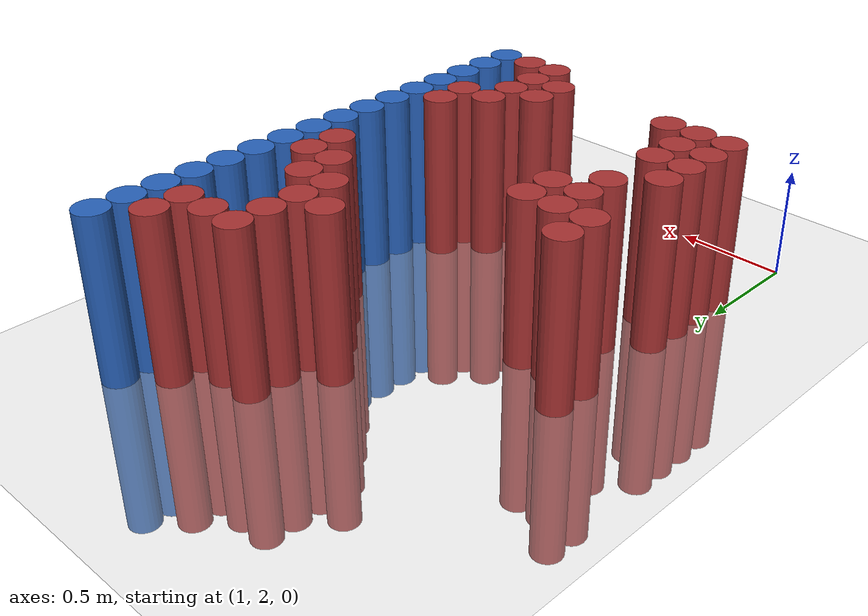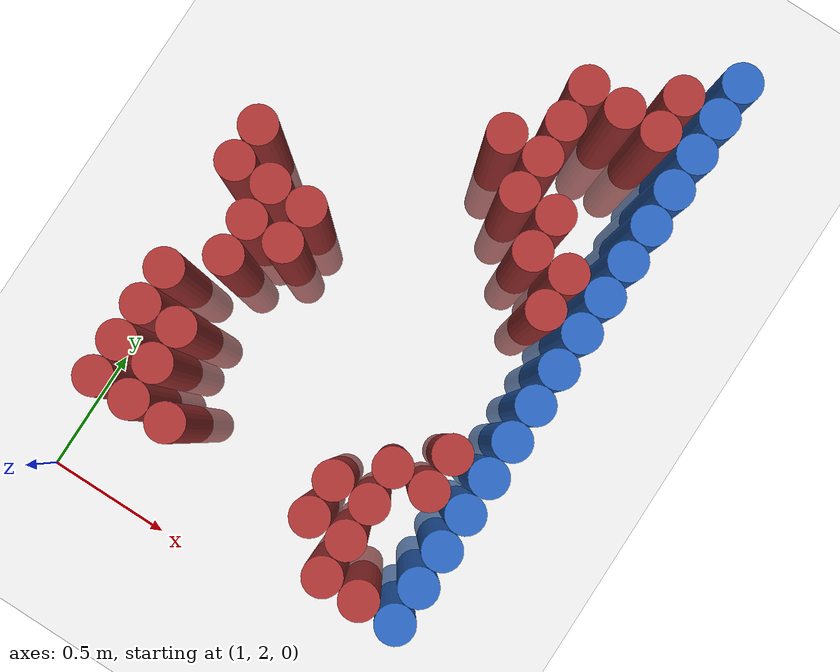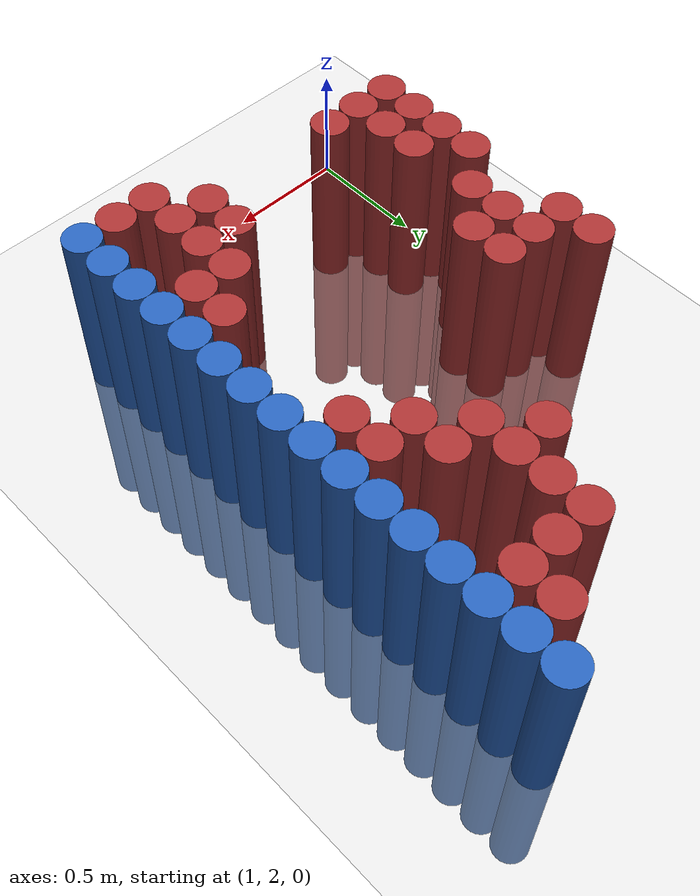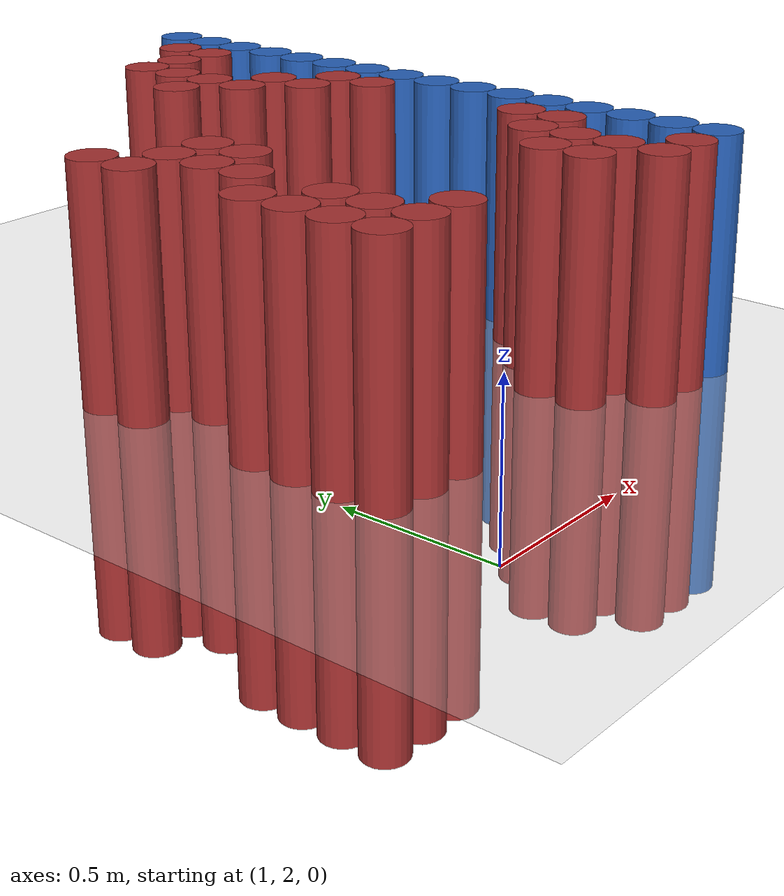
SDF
<sdf version="1.6">
 <world name="default">
  <model name="ground_plane">
   <static>1</static>
   <link name="link">
    <collision name="collision">
     <geometry><plane><normal>0 0 1</normal><size>100 100</size></plane></geometry>
     <surface><friction><ode><mu>100</mu><mu2>50</mu2></ode></friction></surface>
    </collision>
    <visual name="visual">
     <cast_shadows>0</cast_shadows>
     <geometry><plane><normal>0 0 1</normal><size>100 100</size></plane></geometry>
     <material>
      <script><uri>file://media/materials/scripts/gazebo.material</uri><name>Gazebo/Grey</name></script>
     </material>
    </visual>
   </link>
  </model>
  <model name="unit_cylinder_172">
   <static>1</static>
   <pose>1.075000 2.425000 0.000000 0.000000 0.000000 0.000000</pose>
   <link name="link">
    <inertial>
     <mass>1</mass>
     <inertia><ixx>0.145833</ixx><ixy>0</ixy><ixz>0</ixz><iyy>0.145833</iyy><iyz>0</iyz><izz>0.125</izz></inertia>
    </inertial>
    <collision name="collision">
     <geometry><cylinder><radius>0.075000</radius><length>1.5</length></cylinder></geometry>
    </collision>
    <visual name="visual">
     <geometry><cylinder><radius>0.075000</radius><length>1.5</length></cylinder></geometry>
     <material>
      <ambient>0.648000 0.192000 0.192000 1</ambient>
      <diffuse>0.648000 0.192000 0.192000 1</diffuse>
     </material>
     <material>
      <script><name>Gazebo/Grey</name><uri>file://media/materials/scripts/gazebo.material</uri></script>
     </material>
    </visual>
   </link>
  </model>
  <model name="unit_cylinder_173">
   <static>1</static>
   <pose>1.075000 2.575000 0.000000 0.000000 0.000000 0.000000</pose>
   <link name="link">
    <inertial>
     <mass>1</mass>
     <inertia><ixx>0.145833</ixx><ixy>0</ixy><ixz>0</ixz><iyy>0.145833</iyy><iyz>0</iyz><izz>0.125</izz></inertia>
    </inertial>
    <collision name="collision">
     <geometry><cylinder><radius>0.075000</radius><length>1.5</length></cylinder></geometry>
    </collision>
    <visual name="visual">
     <geometry><cylinder><radius>0.075000</radius><length>1.5</length></cylinder></geometry>
     <material>
      <ambient>0.648000 0.192000 0.192000 1</ambient>
      <diffuse>0.648000 0.192000 0.192000 1</diffuse>
     </material>
     <material>
      <script><name>Gazebo/Grey</name><uri>file://media/materials/scripts/gazebo.material</uri></script>
     </material>
    </visual>
   </link>
  </model>
  <model name="unit_cylinder_174">
   <static>1</static>
   <pose>1.075000 2.725000 0.000000 0.000000 0.000000 0.000000</pose>
   <link name="link">
    <inertial>
     <mass>1</mass>
     <inertia><ixx>0.145833</ixx><ixy>0</ixy><ixz>0</ixz><iyy>0.145833</iyy><iyz>0</iyz><izz>0.125</izz></inertia>
    </inertial>
    <collision name="collision">
     <geometry><cylinder><radius>0.075000</radius><length>1.5</length></cylinder></geometry>
    </collision>
    <visual name="visual">
     <geometry><cylinder><radius>0.075000</radius><length>1.5</length></cylinder></geometry>
     <material>
      <ambient>0.648000 0.192000 0.192000 1</ambient>
      <diffuse>0.648000 0.192000 0.192000 1</diffuse>
     </material>
     <material>
      <script><name>Gazebo/Grey</name><uri>file://media/materials/scripts/gazebo.material</uri></script>
     </material>
    </visual>
   </link>
  </model>
  <model name="unit_cylinder_175">
   <static>1</static>
   <pose>1.075000 2.875000 0.000000 0.000000 0.000000 0.000000</pose>
   <link name="link">
    <inertial>
     <mass>1</mass>
     <inertia><ixx>0.145833</ixx><ixy>0</ixy><ixz>0</ixz><iyy>0.145833</iyy><iyz>0</iyz><izz>0.125</izz></inertia>
    </inertial>
    <collision name="collision">
     <geometry><cylinder><radius>0.075000</radius><length>1.5</length></cylinder></geometry>
    </collision>
    <visual name="visual">
     <geometry><cylinder><radius>0.075000</radius><length>1.5</length></cylinder></geometry>
     <material>
      <ambient>0.648000 0.192000 0.192000 1</ambient>
      <diffuse>0.648000 0.192000 0.192000 1</diffuse>
     </material>
     <material>
      <script><name>Gazebo/Grey</name><uri>file://media/materials/scripts/gazebo.material</uri></script>
     </material>
    </visual>
   </link>
  </model>
  <model name="unit_cylinder_176">
   <static>1</static>
   <pose>1.075000 3.325000 0.000000 0.000000 0.000000 0.000000</pose>
   <link name="link">
    <inertial>
     <mass>1</mass>
     <inertia><ixx>0.145833</ixx><ixy>0</ixy><ixz>0</ixz><iyy>0.145833</iyy><iyz>0</iyz><izz>0.125</izz></inertia>
    </inertial>
    <collision name="collision">
     <geometry><cylinder><radius>0.075000</radius><length>1.5</length></cylinder></geometry>
    </collision>
    <visual name="visual">
     <geometry><cylinder><radius>0.075000</radius><length>1.5</length></cylinder></geometry>
     <material>
      <ambient>0.648000 0.192000 0.192000 1</ambient>
      <diffuse>0.648000 0.192000 0.192000 1</diffuse>
     </material>
     <material>
      <script><name>Gazebo/Grey</name><uri>file://media/materials/scripts/gazebo.material</uri></script>
     </material>
    </visual>
   </link>
  </model>
  <model name="unit_cylinder_177">
   <static>1</static>
   <pose>1.075000 3.475000 0.000000 0.000000 0.000000 0.000000</pose>
   <link name="link">
    <inertial>
     <mass>1</mass>
     <inertia><ixx>0.145833</ixx><ixy>0</ixy><ixz>0</ixz><iyy>0.145833</iyy><iyz>0</iyz><izz>0.125</izz></inertia>
    </inertial>
    <collision name="collision">
     <geometry><cylinder><radius>0.075000</radius><length>1.5</length></cylinder></geometry>
    </collision>
    <visual name="visual">
     <geometry><cylinder><radius>0.075000</radius><length>1.5</length></cylinder></geometry>
     <material>
      <ambient>0.648000 0.192000 0.192000 1</ambient>
      <diffuse>0.648000 0.192000 0.192000 1</diffuse>
     </material>
     <material>
      <script><name>Gazebo/Grey</name><uri>file://media/materials/scripts/gazebo.material</uri></script>
     </material>
    </visual>
   </link>
  </model>
  <model name="unit_cylinder_179">
   <static>1</static>
   <pose>1.225000 2.425000 0.000000 0.000000 0.000000 0.000000</pose>
   <link name="link">
    <inertial>
     <mass>1</mass>
     <inertia><ixx>0.145833</ixx><ixy>0</ixy><ixz>0</ixz><iyy>0.145833</iyy><iyz>0</iyz><izz>0.125</izz></inertia>
    </inertial>
    <collision name="collision">
     <geometry><cylinder><radius>0.075000</radius><length>1.5</length></cylinder></geometry>
    </collision>
    <visual name="visual">
     <geometry><cylinder><radius>0.075000</radius><length>1.5</length></cylinder></geometry>
     <material>
      <ambient>0.648000 0.192000 0.192000 1</ambient>
      <diffuse>0.648000 0.192000 0.192000 1</diffuse>
     </material>
     <material>
      <script><name>Gazebo/Grey</name><uri>file://media/materials/scripts/gazebo.material</uri></script>
     </material>
    </visual>
   </link>
  </model>
  <model name="unit_cylinder_180">
   <static>1</static>
   <pose>1.225000 2.575000 0.000000 0.000000 0.000000 0.000000</pose>
   <link name="link">
    <inertial>
     <mass>1</mass>
     <inertia><ixx>0.145833</ixx><ixy>0</ixy><ixz>0</ixz><iyy>0.145833</iyy><iyz>0</iyz><izz>0.125</izz></inertia>
    </inertial>
    <collision name="collision">
     <geometry><cylinder><radius>0.075000</radius><length>1.5</length></cylinder></geometry>
    </collision>
    <visual name="visual">
     <geometry><cylinder><radius>0.075000</radius><length>1.5</length></cylinder></geometry>
     <material>
      <ambient>0.648000 0.192000 0.192000 1</ambient>
      <diffuse>0.648000 0.192000 0.192000 1</diffuse>
     </material>
     <material>
      <script><name>Gazebo/Grey</name><uri>file://media/materials/scripts/gazebo.material</uri></script>
     </material>
    </visual>
   </link>
  </model>
  <model name="unit_cylinder_181">
   <static>1</static>
   <pose>1.225000 2.725000 0.000000 0.000000 0.000000 0.000000</pose>
   <link name="link">
    <inertial>
     <mass>1</mass>
     <inertia><ixx>0.145833</ixx><ixy>0</ixy><ixz>0</ixz><iyy>0.145833</iyy><iyz>0</iyz><izz>0.125</izz></inertia>
    </inertial>
    <collision name="collision">
     <geometry><cylinder><radius>0.075000</radius><length>1.5</length></cylinder></geometry>
    </collision>
    <visual name="visual">
     <geometry><cylinder><radius>0.075000</radius><length>1.5</length></cylinder></geometry>
     <material>
      <ambient>0.648000 0.192000 0.192000 1</ambient>
      <diffuse>0.648000 0.192000 0.192000 1</diffuse>
     </material>
     <material>
      <script><name>Gazebo/Grey</name><uri>file://media/materials/scripts/gazebo.material</uri></script>
     </material>
    </visual>
   </link>
  </model>
  <model name="unit_cylinder_182">
   <static>1</static>
   <pose>1.225000 3.025000 0.000000 0.000000 0.000000 0.000000</pose>
   <link name="link">
    <inertial>
     <mass>1</mass>
     <inertia><ixx>0.145833</ixx><ixy>0</ixy><ixz>0</ixz><iyy>0.145833</iyy><iyz>0</iyz><izz>0.125</izz></inertia>
    </inertial>
    <collision name="collision">
     <geometry><cylinder><radius>0.075000</radius><length>1.5</length></cylinder></geometry>
    </collision>
    <visual name="visual">
     <geometry><cylinder><radius>0.075000</radius><length>1.5</length></cylinder></geometry>
     <material>
      <ambient>0.648000 0.192000 0.192000 1</ambient>
      <diffuse>0.648000 0.192000 0.192000 1</diffuse>
     </material>
     <material>
      <script><name>Gazebo/Grey</name><uri>file://media/materials/scripts/gazebo.material</uri></script>
     </material>
    </visual>
   </link>
  </model>
  <model name="unit_cylinder_183">
   <static>1</static>
   <pose>1.225000 3.175000 0.000000 0.000000 0.000000 0.000000</pose>
   <link name="link">
    <inertial>
     <mass>1</mass>
     <inertia><ixx>0.145833</ixx><ixy>0</ixy><ixz>0</ixz><iyy>0.145833</iyy><iyz>0</iyz><izz>0.125</izz></inertia>
    </inertial>
    <collision name="collision">
     <geometry><cylinder><radius>0.075000</radius><length>1.5</length></cylinder></geometry>
    </collision>
    <visual name="visual">
     <geometry><cylinder><radius>0.075000</radius><length>1.5</length></cylinder></geometry>
     <material>
      <ambient>0.648000 0.192000 0.192000 1</ambient>
      <diffuse>0.648000 0.192000 0.192000 1</diffuse>
     </material>
     <material>
      <script><name>Gazebo/Grey</name><uri>file://media/materials/scripts/gazebo.material</uri></script>
     </material>
    </visual>
   </link>
  </model>
  <model name="unit_cylinder_184">
   <static>1</static>
   <pose>1.225000 3.325000 0.000000 0.000000 0.000000 0.000000</pose>
   <link name="link">
    <inertial>
     <mass>1</mass>
     <inertia><ixx>0.145833</ixx><ixy>0</ixy><ixz>0</ixz><iyy>0.145833</iyy><iyz>0</iyz><izz>0.125</izz></inertia>
    </inertial>
    <collision name="collision">
     <geometry><cylinder><radius>0.075000</radius><length>1.5</length></cylinder></geometry>
    </collision>
    <visual name="visual">
     <geometry><cylinder><radius>0.075000</radius><length>1.5</length></cylinder></geometry>
     <material>
      <ambient>0.648000 0.192000 0.192000 1</ambient>
      <diffuse>0.648000 0.192000 0.192000 1</diffuse>
     </material>
     <material>
      <script><name>Gazebo/Grey</name><uri>file://media/materials/scripts/gazebo.material</uri></script>
     </material>
    </visual>
   </link>
  </model>
  <model name="unit_cylinder_188">
   <static>1</static>
   <pose>1.375000 2.425000 0.000000 0.000000 0.000000 0.000000</pose>
   <link name="link">
    <inertial>
     <mass>1</mass>
     <inertia><ixx>0.145833</ixx><ixy>0</ixy><ixz>0</ixz><iyy>0.145833</iyy><iyz>0</iyz><izz>0.125</izz></inertia>
    </inertial>
    <collision name="collision">
     <geometry><cylinder><radius>0.075000</radius><length>1.5</length></cylinder></geometry>
    </collision>
    <visual name="visual">
     <geometry><cylinder><radius>0.075000</radius><length>1.5</length></cylinder></geometry>
     <material>
      <ambient>0.648000 0.192000 0.192000 1</ambient>
      <diffuse>0.648000 0.192000 0.192000 1</diffuse>
     </material>
     <material>
      <script><name>Gazebo/Grey</name><uri>file://media/materials/scripts/gazebo.material</uri></script>
     </material>
    </visual>
   </link>
  </model>
  <model name="unit_cylinder_189">
   <static>1</static>
   <pose>1.375000 3.175000 0.000000 0.000000 0.000000 0.000000</pose>
   <link name="link">
    <inertial>
     <mass>1</mass>
     <inertia><ixx>0.145833</ixx><ixy>0</ixy><ixz>0</ixz><iyy>0.145833</iyy><iyz>0</iyz><izz>0.125</izz></inertia>
    </inertial>
    <collision name="collision">
     <geometry><cylinder><radius>0.075000</radius><length>1.5</length></cylinder></geometry>
    </collision>
    <visual name="visual">
     <geometry><cylinder><radius>0.075000</radius><length>1.5</length></cylinder></geometry>
     <material>
      <ambient>0.648000 0.192000 0.192000 1</ambient>
      <diffuse>0.648000 0.192000 0.192000 1</diffuse>
     </material>
     <material>
      <script><name>Gazebo/Grey</name><uri>file://media/materials/scripts/gazebo.material</uri></script>
     </material>
    </visual>
   </link>
  </model>
  <model name="unit_cylinder_190">
   <static>1</static>
   <pose>1.375000 3.325000 0.000000 0.000000 0.000000 0.000000</pose>
   <link name="link">
    <inertial>
     <mass>1</mass>
     <inertia><ixx>0.145833</ixx><ixy>0</ixy><ixz>0</ixz><iyy>0.145833</iyy><iyz>0</iyz><izz>0.125</izz></inertia>
    </inertial>
    <collision name="collision">
     <geometry><cylinder><radius>0.075000</radius><length>1.5</length></cylinder></geometry>
    </collision>
    <visual name="visual">
     <geometry><cylinder><radius>0.075000</radius><length>1.5</length></cylinder></geometry>
     <material>
      <ambient>0.648000 0.192000 0.192000 1</ambient>
      <diffuse>0.648000 0.192000 0.192000 1</diffuse>
     </material>
     <material>
      <script><name>Gazebo/Grey</name><uri>file://media/materials/scripts/gazebo.material</uri></script>
     </material>
    </visual>
   </link>
  </model>
  <model name="unit_cylinder_198">
   <static>1</static>
   <pose>1.825000 3.925000 0.000000 0.000000 0.000000 0.000000</pose>
   <link name="link">
    <inertial>
     <mass>1</mass>
     <inertia><ixx>0.145833</ixx><ixy>0</ixy><ixz>0</ixz><iyy>0.145833</iyy><iyz>0</iyz><izz>0.125</izz></inertia>
    </inertial>
    <collision name="collision">
     <geometry><cylinder><radius>0.075000</radius><length>1.5</length></cylinder></geometry>
    </collision>
    <visual name="visual">
     <geometry><cylinder><radius>0.075000</radius><length>1.5</length></cylinder></geometry>
     <material>
      <ambient>0.648000 0.192000 0.192000 1</ambient>
      <diffuse>0.648000 0.192000 0.192000 1</diffuse>
     </material>
     <material>
      <script><name>Gazebo/Grey</name><uri>file://media/materials/scripts/gazebo.material</uri></script>
     </material>
    </visual>
   </link>
  </model>
  <model name="unit_cylinder_199">
   <static>1</static>
   <pose>1.975000 2.425000 0.000000 0.000000 0.000000 0.000000</pose>
   <link name="link">
    <inertial>
     <mass>1</mass>
     <inertia><ixx>0.145833</ixx><ixy>0</ixy><ixz>0</ixz><iyy>0.145833</iyy><iyz>0</iyz><izz>0.125</izz></inertia>
    </inertial>
    <collision name="collision">
     <geometry><cylinder><radius>0.075000</radius><length>1.5</length></cylinder></geometry>
    </collision>
    <visual name="visual">
     <geometry><cylinder><radius>0.075000</radius><length>1.5</length></cylinder></geometry>
     <material>
      <ambient>0.648000 0.192000 0.192000 1</ambient>
      <diffuse>0.648000 0.192000 0.192000 1</diffuse>
     </material>
     <material>
      <script><name>Gazebo/Grey</name><uri>file://media/materials/scripts/gazebo.material</uri></script>
     </material>
    </visual>
   </link>
  </model>
  <model name="unit_cylinder_200">
   <static>1</static>
   <pose>1.975000 2.575000 0.000000 0.000000 0.000000 0.000000</pose>
   <link name="link">
    <inertial>
     <mass>1</mass>
     <inertia><ixx>0.145833</ixx><ixy>0</ixy><ixz>0</ixz><iyy>0.145833</iyy><iyz>0</iyz><izz>0.125</izz></inertia>
    </inertial>
    <collision name="collision">
     <geometry><cylinder><radius>0.075000</radius><length>1.5</length></cylinder></geometry>
    </collision>
    <visual name="visual">
     <geometry><cylinder><radius>0.075000</radius><length>1.5</length></cylinder></geometry>
     <material>
      <ambient>0.648000 0.192000 0.192000 1</ambient>
      <diffuse>0.648000 0.192000 0.192000 1</diffuse>
     </material>
     <material>
      <script><name>Gazebo/Grey</name><uri>file://media/materials/scripts/gazebo.material</uri></script>
     </material>
    </visual>
   </link>
  </model>
  <model name="unit_cylinder_201">
   <static>1</static>
   <pose>1.975000 3.775000 0.000000 0.000000 0.000000 0.000000</pose>
   <link name="link">
    <inertial>
     <mass>1</mass>
     <inertia><ixx>0.145833</ixx><ixy>0</ixy><ixz>0</ixz><iyy>0.145833</iyy><iyz>0</iyz><izz>0.125</izz></inertia>
    </inertial>
    <collision name="collision">
     <geometry><cylinder><radius>0.075000</radius><length>1.5</length></cylinder></geometry>
    </collision>
    <visual name="visual">
     <geometry><cylinder><radius>0.075000</radius><length>1.5</length></cylinder></geometry>
     <material>
      <ambient>0.648000 0.192000 0.192000 1</ambient>
      <diffuse>0.648000 0.192000 0.192000 1</diffuse>
     </material>
     <material>
      <script><name>Gazebo/Grey</name><uri>file://media/materials/scripts/gazebo.material</uri></script>
     </material>
    </visual>
   </link>
  </model>
  <model name="unit_cylinder_202">
   <static>1</static>
   <pose>1.975000 3.925000 0.000000 0.000000 0.000000 0.000000</pose>
   <link name="link">
    <inertial>
     <mass>1</mass>
     <inertia><ixx>0.145833</ixx><ixy>0</ixy><ixz>0</ixz><iyy>0.145833</iyy><iyz>0</iyz><izz>0.125</izz></inertia>
    </inertial>
    <collision name="collision">
     <geometry><cylinder><radius>0.075000</radius><length>1.5</length></cylinder></geometry>
    </collision>
    <visual name="visual">
     <geometry><cylinder><radius>0.075000</radius><length>1.5</length></cylinder></geometry>
     <material>
      <ambient>0.648000 0.192000 0.192000 1</ambient>
      <diffuse>0.648000 0.192000 0.192000 1</diffuse>
     </material>
     <material>
      <script><name>Gazebo/Grey</name><uri>file://media/materials/scripts/gazebo.material</uri></script>
     </material>
    </visual>
   </link>
  </model>
  <model name="unit_cylinder_203">
   <static>1</static>
   <pose>1.975000 4.075000 0.000000 0.000000 0.000000 0.000000</pose>
   <link name="link">
    <inertial>
     <mass>1</mass>
     <inertia><ixx>0.145833</ixx><ixy>0</ixy><ixz>0</ixz><iyy>0.145833</iyy><iyz>0</iyz><izz>0.125</izz></inertia>
    </inertial>
    <collision name="collision">
     <geometry><cylinder><radius>0.075000</radius><length>1.5</length></cylinder></geometry>
    </collision>
    <visual name="visual">
     <geometry><cylinder><radius>0.075000</radius><length>1.5</length></cylinder></geometry>
     <material>
      <ambient>0.648000 0.192000 0.192000 1</ambient>
      <diffuse>0.648000 0.192000 0.192000 1</diffuse>
     </material>
     <material>
      <script><name>Gazebo/Grey</name><uri>file://media/materials/scripts/gazebo.material</uri></script>
     </material>
    </visual>
   </link>
  </model>
  <model name="unit_cylinder_204">
   <static>1</static>
   <pose>1.975000 4.225000 0.000000 0.000000 0.000000 0.000000</pose>
   <link name="link">
    <inertial>
     <mass>1</mass>
     <inertia><ixx>0.145833</ixx><ixy>0</ixy><ixz>0</ixz><iyy>0.145833</iyy><iyz>0</iyz><izz>0.125</izz></inertia>
    </inertial>
    <collision name="collision">
     <geometry><cylinder><radius>0.075000</radius><length>1.5</length></cylinder></geometry>
    </collision>
    <visual name="visual">
     <geometry><cylinder><radius>0.075000</radius><length>1.5</length></cylinder></geometry>
     <material>
      <ambient>0.648000 0.192000 0.192000 1</ambient>
      <diffuse>0.648000 0.192000 0.192000 1</diffuse>
     </material>
     <material>
      <script><name>Gazebo/Grey</name><uri>file://media/materials/scripts/gazebo.material</uri></script>
     </material>
    </visual>
   </link>
  </model>
  <model name="unit_cylinder_206">
   <static>1</static>
   <pose>2.125000 2.275000 0.000000 0.000000 0.000000 0.000000</pose>
   <link name="link">
    <inertial>
     <mass>1</mass>
     <inertia><ixx>0.145833</ixx><ixy>0</ixy><ixz>0</ixz><iyy>0.145833</iyy><iyz>0</iyz><izz>0.125</izz></inertia>
    </inertial>
    <collision name="collision">
     <geometry><cylinder><radius>0.075000</radius><length>1.5</length></cylinder></geometry>
    </collision>
    <visual name="visual">
     <geometry><cylinder><radius>0.075000</radius><length>1.5</length></cylinder></geometry>
     <material>
      <ambient>0.648000 0.192000 0.192000 1</ambient>
      <diffuse>0.648000 0.192000 0.192000 1</diffuse>
     </material>
     <material>
      <script><name>Gazebo/Grey</name><uri>file://media/materials/scripts/gazebo.material</uri></script>
     </material>
    </visual>
   </link>
  </model>
  <model name="unit_cylinder_207">
   <static>1</static>
   <pose>2.125000 2.425000 0.000000 0.000000 0.000000 0.000000</pose>
   <link name="link">
    <inertial>
     <mass>1</mass>
     <inertia><ixx>0.145833</ixx><ixy>0</ixy><ixz>0</ixz><iyy>0.145833</iyy><iyz>0</iyz><izz>0.125</izz></inertia>
    </inertial>
    <collision name="collision">
     <geometry><cylinder><radius>0.075000</radius><length>1.5</length></cylinder></geometry>
    </collision>
    <visual name="visual">
     <geometry><cylinder><radius>0.075000</radius><length>1.5</length></cylinder></geometry>
     <material>
      <ambient>0.648000 0.192000 0.192000 1</ambient>
      <diffuse>0.648000 0.192000 0.192000 1</diffuse>
     </material>
     <material>
      <script><name>Gazebo/Grey</name><uri>file://media/materials/scripts/gazebo.material</uri></script>
     </material>
    </visual>
   </link>
  </model>
  <model name="unit_cylinder_208">
   <static>1</static>
   <pose>2.125000 2.575000 0.000000 0.000000 0.000000 0.000000</pose>
   <link name="link">
    <inertial>
     <mass>1</mass>
     <inertia><ixx>0.145833</ixx><ixy>0</ixy><ixz>0</ixz><iyy>0.145833</iyy><iyz>0</iyz><izz>0.125</izz></inertia>
    </inertial>
    <collision name="collision">
     <geometry><cylinder><radius>0.075000</radius><length>1.5</length></cylinder></geometry>
    </collision>
    <visual name="visual">
     <geometry><cylinder><radius>0.075000</radius><length>1.5</length></cylinder></geometry>
     <material>
      <ambient>0.648000 0.192000 0.192000 1</ambient>
      <diffuse>0.648000 0.192000 0.192000 1</diffuse>
     </material>
     <material>
      <script><name>Gazebo/Grey</name><uri>file://media/materials/scripts/gazebo.material</uri></script>
     </material>
    </visual>
   </link>
  </model>
  <model name="unit_cylinder_209">
   <static>1</static>
   <pose>2.125000 2.725000 0.000000 0.000000 0.000000 0.000000</pose>
   <link name="link">
    <inertial>
     <mass>1</mass>
     <inertia><ixx>0.145833</ixx><ixy>0</ixy><ixz>0</ixz><iyy>0.145833</iyy><iyz>0</iyz><izz>0.125</izz></inertia>
    </inertial>
    <collision name="collision">
     <geometry><cylinder><radius>0.075000</radius><length>1.5</length></cylinder></geometry>
    </collision>
    <visual name="visual">
     <geometry><cylinder><radius>0.075000</radius><length>1.5</length></cylinder></geometry>
     <material>
      <ambient>0.648000 0.192000 0.192000 1</ambient>
      <diffuse>0.648000 0.192000 0.192000 1</diffuse>
     </material>
     <material>
      <script><name>Gazebo/Grey</name><uri>file://media/materials/scripts/gazebo.material</uri></script>
     </material>
    </visual>
   </link>
  </model>
  <model name="unit_cylinder_210">
   <static>1</static>
   <pose>2.125000 3.625000 0.000000 0.000000 0.000000 0.000000</pose>
   <link name="link">
    <inertial>
     <mass>1</mass>
     <inertia><ixx>0.145833</ixx><ixy>0</ixy><ixz>0</ixz><iyy>0.145833</iyy><iyz>0</iyz><izz>0.125</izz></inertia>
    </inertial>
    <collision name="collision">
     <geometry><cylinder><radius>0.075000</radius><length>1.5</length></cylinder></geometry>
    </collision>
    <visual name="visual">
     <geometry><cylinder><radius>0.075000</radius><length>1.5</length></cylinder></geometry>
     <material>
      <ambient>0.648000 0.192000 0.192000 1</ambient>
      <diffuse>0.648000 0.192000 0.192000 1</diffuse>
     </material>
     <material>
      <script><name>Gazebo/Grey</name><uri>file://media/materials/scripts/gazebo.material</uri></script>
     </material>
    </visual>
   </link>
  </model>
  <model name="unit_cylinder_211">
   <static>1</static>
   <pose>2.125000 3.775000 0.000000 0.000000 0.000000 0.000000</pose>
   <link name="link">
    <inertial>
     <mass>1</mass>
     <inertia><ixx>0.145833</ixx><ixy>0</ixy><ixz>0</ixz><iyy>0.145833</iyy><iyz>0</iyz><izz>0.125</izz></inertia>
    </inertial>
    <collision name="collision">
     <geometry><cylinder><radius>0.075000</radius><length>1.5</length></cylinder></geometry>
    </collision>
    <visual name="visual">
     <geometry><cylinder><radius>0.075000</radius><length>1.5</length></cylinder></geometry>
     <material>
      <ambient>0.648000 0.192000 0.192000 1</ambient>
      <diffuse>0.648000 0.192000 0.192000 1</diffuse>
     </material>
     <material>
      <script><name>Gazebo/Grey</name><uri>file://media/materials/scripts/gazebo.material</uri></script>
     </material>
    </visual>
   </link>
  </model>
  <model name="unit_cylinder_212">
   <static>1</static>
   <pose>2.125000 4.225000 0.000000 0.000000 0.000000 0.000000</pose>
   <link name="link">
    <inertial>
     <mass>1</mass>
     <inertia><ixx>0.145833</ixx><ixy>0</ixy><ixz>0</ixz><iyy>0.145833</iyy><iyz>0</iyz><izz>0.125</izz></inertia>
    </inertial>
    <collision name="collision">
     <geometry><cylinder><radius>0.075000</radius><length>1.5</length></cylinder></geometry>
    </collision>
    <visual name="visual">
     <geometry><cylinder><radius>0.075000</radius><length>1.5</length></cylinder></geometry>
     <material>
      <ambient>0.648000 0.192000 0.192000 1</ambient>
      <diffuse>0.648000 0.192000 0.192000 1</diffuse>
     </material>
     <material>
      <script><name>Gazebo/Grey</name><uri>file://media/materials/scripts/gazebo.material</uri></script>
     </material>
    </visual>
   </link>
  </model>
  <model name="unit_cylinder_222">
   <static>1</static>
   <pose>2.275000 2.275000 0.000000 0.000000 0.000000 0.000000</pose>
   <link name="link">
    <inertial>
     <mass>1</mass>
     <inertia><ixx>0.145833</ixx><ixy>0</ixy><ixz>0</ixz><iyy>0.145833</iyy><iyz>0</iyz><izz>0.125</izz></inertia>
    </inertial>
    <collision name="collision">
     <geometry><cylinder><radius>0.075000</radius><length>1.5</length></cylinder></geometry>
    </collision>
    <visual name="visual">
     <geometry><cylinder><radius>0.075000</radius><length>1.5</length></cylinder></geometry>
     <material>
      <ambient>0.648000 0.192000 0.192000 1</ambient>
      <diffuse>0.648000 0.192000 0.192000 1</diffuse>
     </material>
     <material>
      <script><name>Gazebo/Grey</name><uri>file://media/materials/scripts/gazebo.material</uri></script>
     </material>
    </visual>
   </link>
  </model>
  <model name="unit_cylinder_223">
   <static>1</static>
   <pose>2.275000 2.725000 0.000000 0.000000 0.000000 0.000000</pose>
   <link name="link">
    <inertial>
     <mass>1</mass>
     <inertia><ixx>0.145833</ixx><ixy>0</ixy><ixz>0</ixz><iyy>0.145833</iyy><iyz>0</iyz><izz>0.125</izz></inertia>
    </inertial>
    <collision name="collision">
     <geometry><cylinder><radius>0.075000</radius><length>1.5</length></cylinder></geometry>
    </collision>
    <visual name="visual">
     <geometry><cylinder><radius>0.075000</radius><length>1.5</length></cylinder></geometry>
     <material>
      <ambient>0.648000 0.192000 0.192000 1</ambient>
      <diffuse>0.648000 0.192000 0.192000 1</diffuse>
     </material>
     <material>
      <script><name>Gazebo/Grey</name><uri>file://media/materials/scripts/gazebo.material</uri></script>
     </material>
    </visual>
   </link>
  </model>
  <model name="unit_cylinder_224">
   <static>1</static>
   <pose>2.275000 2.875000 0.000000 0.000000 0.000000 0.000000</pose>
   <link name="link">
    <inertial>
     <mass>1</mass>
     <inertia><ixx>0.145833</ixx><ixy>0</ixy><ixz>0</ixz><iyy>0.145833</iyy><iyz>0</iyz><izz>0.125</izz></inertia>
    </inertial>
    <collision name="collision">
     <geometry><cylinder><radius>0.075000</radius><length>1.5</length></cylinder></geometry>
    </collision>
    <visual name="visual">
     <geometry><cylinder><radius>0.075000</radius><length>1.5</length></cylinder></geometry>
     <material>
      <ambient>0.648000 0.192000 0.192000 1</ambient>
      <diffuse>0.648000 0.192000 0.192000 1</diffuse>
     </material>
     <material>
      <script><name>Gazebo/Grey</name><uri>file://media/materials/scripts/gazebo.material</uri></script>
     </material>
    </visual>
   </link>
  </model>
  <model name="unit_cylinder_225">
   <static>1</static>
   <pose>2.275000 3.475000 0.000000 0.000000 0.000000 0.000000</pose>
   <link name="link">
    <inertial>
     <mass>1</mass>
     <inertia><ixx>0.145833</ixx><ixy>0</ixy><ixz>0</ixz><iyy>0.145833</iyy><iyz>0</iyz><izz>0.125</izz></inertia>
    </inertial>
    <collision name="collision">
     <geometry><cylinder><radius>0.075000</radius><length>1.5</length></cylinder></geometry>
    </collision>
    <visual name="visual">
     <geometry><cylinder><radius>0.075000</radius><length>1.5</length></cylinder></geometry>
     <material>
      <ambient>0.648000 0.192000 0.192000 1</ambient>
      <diffuse>0.648000 0.192000 0.192000 1</diffuse>
     </material>
     <material>
      <script><name>Gazebo/Grey</name><uri>file://media/materials/scripts/gazebo.material</uri></script>
     </material>
    </visual>
   </link>
  </model>
  <model name="unit_cylinder_226">
   <static>1</static>
   <pose>2.275000 3.625000 0.000000 0.000000 0.000000 0.000000</pose>
   <link name="link">
    <inertial>
     <mass>1</mass>
     <inertia><ixx>0.145833</ixx><ixy>0</ixy><ixz>0</ixz><iyy>0.145833</iyy><iyz>0</iyz><izz>0.125</izz></inertia>
    </inertial>
    <collision name="collision">
     <geometry><cylinder><radius>0.075000</radius><length>1.5</length></cylinder></geometry>
    </collision>
    <visual name="visual">
     <geometry><cylinder><radius>0.075000</radius><length>1.5</length></cylinder></geometry>
     <material>
      <ambient>0.648000 0.192000 0.192000 1</ambient>
      <diffuse>0.648000 0.192000 0.192000 1</diffuse>
     </material>
     <material>
      <script><name>Gazebo/Grey</name><uri>file://media/materials/scripts/gazebo.material</uri></script>
     </material>
    </visual>
   </link>
  </model>
  <model name="unit_cylinder_227">
   <static>1</static>
   <pose>2.275000 4.225000 0.000000 0.000000 0.000000 0.000000</pose>
   <link name="link">
    <inertial>
     <mass>1</mass>
     <inertia><ixx>0.145833</ixx><ixy>0</ixy><ixz>0</ixz><iyy>0.145833</iyy><iyz>0</iyz><izz>0.125</izz></inertia>
    </inertial>
    <collision name="collision">
     <geometry><cylinder><radius>0.075000</radius><length>1.5</length></cylinder></geometry>
    </collision>
    <visual name="visual">
     <geometry><cylinder><radius>0.075000</radius><length>1.5</length></cylinder></geometry>
     <material>
      <ambient>0.648000 0.192000 0.192000 1</ambient>
      <diffuse>0.648000 0.192000 0.192000 1</diffuse>
     </material>
     <material>
      <script><name>Gazebo/Grey</name><uri>file://media/materials/scripts/gazebo.material</uri></script>
     </material>
    </visual>
   </link>
  </model>
  <model name="unit_cylinder_228">
   <static>1</static>
   <pose>2.275000 4.375000 0.000000 0.000000 0.000000 0.000000</pose>
   <link name="link">
    <inertial>
     <mass>1</mass>
     <inertia><ixx>0.145833</ixx><ixy>0</ixy><ixz>0</ixz><iyy>0.145833</iyy><iyz>0</iyz><izz>0.125</izz></inertia>
    </inertial>
    <collision name="collision">
     <geometry><cylinder><radius>0.075000</radius><length>1.5</length></cylinder></geometry>
    </collision>
    <visual name="visual">
     <geometry><cylinder><radius>0.075000</radius><length>1.5</length></cylinder></geometry>
     <material>
      <ambient>0.648000 0.192000 0.192000 1</ambient>
      <diffuse>0.648000 0.192000 0.192000 1</diffuse>
     </material>
     <material>
      <script><name>Gazebo/Grey</name><uri>file://media/materials/scripts/gazebo.material</uri></script>
     </material>
    </visual>
   </link>
  </model>
  <model name="unit_cylinder_243">
   <static>1</static>
   <pose>2.425000 2.275000 0.000000 0.000000 0.000000 0.000000</pose>
   <link name="link">
    <inertial>
     <mass>1</mass>
     <inertia><ixx>0.145833</ixx><ixy>0</ixy><ixz>0</ixz><iyy>0.145833</iyy><iyz>0</iyz><izz>0.125</izz></inertia>
    </inertial>
    <collision name="collision">
     <geometry><cylinder><radius>0.075000</radius><length>1.5</length></cylinder></geometry>
    </collision>
    <visual name="visual">
     <geometry><cylinder><radius>0.075000</radius><length>1.5</length></cylinder></geometry>
     <material>
      <ambient>0.152000 0.379000 0.720000 1</ambient>
      <diffuse>0.152000 0.379000 0.720000 1</diffuse>
     </material>
     <material>
      <script><name>Gazebo/Grey</name><uri>file://media/materials/scripts/gazebo.material</uri></script>
     </material>
    </visual>
   </link>
  </model>
  <model name="unit_cylinder_244">
   <static>1</static>
   <pose>2.425000 2.425000 0.000000 0.000000 0.000000 0.000000</pose>
   <link name="link">
    <inertial>
     <mass>1</mass>
     <inertia><ixx>0.145833</ixx><ixy>0</ixy><ixz>0</ixz><iyy>0.145833</iyy><iyz>0</iyz><izz>0.125</izz></inertia>
    </inertial>
    <collision name="collision">
     <geometry><cylinder><radius>0.075000</radius><length>1.5</length></cylinder></geometry>
    </collision>
    <visual name="visual">
     <geometry><cylinder><radius>0.075000</radius><length>1.5</length></cylinder></geometry>
     <material>
      <ambient>0.152000 0.379000 0.720000 1</ambient>
      <diffuse>0.152000 0.379000 0.720000 1</diffuse>
     </material>
     <material>
      <script><name>Gazebo/Grey</name><uri>file://media/materials/scripts/gazebo.material</uri></script>
     </material>
    </visual>
   </link>
  </model>
  <model name="unit_cylinder_245">
   <static>1</static>
   <pose>2.425000 2.575000 0.000000 0.000000 0.000000 0.000000</pose>
   <link name="link">
    <inertial>
     <mass>1</mass>
     <inertia><ixx>0.145833</ixx><ixy>0</ixy><ixz>0</ixz><iyy>0.145833</iyy><iyz>0</iyz><izz>0.125</izz></inertia>
    </inertial>
    <collision name="collision">
     <geometry><cylinder><radius>0.075000</radius><length>1.5</length></cylinder></geometry>
    </collision>
    <visual name="visual">
     <geometry><cylinder><radius>0.075000</radius><length>1.5</length></cylinder></geometry>
     <material>
      <ambient>0.152000 0.379000 0.720000 1</ambient>
      <diffuse>0.152000 0.379000 0.720000 1</diffuse>
     </material>
     <material>
      <script><name>Gazebo/Grey</name><uri>file://media/materials/scripts/gazebo.material</uri></script>
     </material>
    </visual>
   </link>
  </model>
  <model name="unit_cylinder_246">
   <static>1</static>
   <pose>2.425000 2.725000 0.000000 0.000000 0.000000 0.000000</pose>
   <link name="link">
    <inertial>
     <mass>1</mass>
     <inertia><ixx>0.145833</ixx><ixy>0</ixy><ixz>0</ixz><iyy>0.145833</iyy><iyz>0</iyz><izz>0.125</izz></inertia>
    </inertial>
    <collision name="collision">
     <geometry><cylinder><radius>0.075000</radius><length>1.5</length></cylinder></geometry>
    </collision>
    <visual name="visual">
     <geometry><cylinder><radius>0.075000</radius><length>1.5</length></cylinder></geometry>
     <material>
      <ambient>0.152000 0.379000 0.720000 1</ambient>
      <diffuse>0.152000 0.379000 0.720000 1</diffuse>
     </material>
     <material>
      <script><name>Gazebo/Grey</name><uri>file://media/materials/scripts/gazebo.material</uri></script>
     </material>
    </visual>
   </link>
  </model>
  <model name="unit_cylinder_247">
   <static>1</static>
   <pose>2.425000 2.875000 0.000000 0.000000 0.000000 0.000000</pose>
   <link name="link">
    <inertial>
     <mass>1</mass>
     <inertia><ixx>0.145833</ixx><ixy>0</ixy><ixz>0</ixz><iyy>0.145833</iyy><iyz>0</iyz><izz>0.125</izz></inertia>
    </inertial>
    <collision name="collision">
     <geometry><cylinder><radius>0.075000</radius><length>1.5</length></cylinder></geometry>
    </collision>
    <visual name="visual">
     <geometry><cylinder><radius>0.075000</radius><length>1.5</length></cylinder></geometry>
     <material>
      <ambient>0.152000 0.379000 0.720000 1</ambient>
      <diffuse>0.152000 0.379000 0.720000 1</diffuse>
     </material>
     <material>
      <script><name>Gazebo/Grey</name><uri>file://media/materials/scripts/gazebo.material</uri></script>
     </material>
    </visual>
   </link>
  </model>
  <model name="unit_cylinder_248">
   <static>1</static>
   <pose>2.425000 3.025000 0.000000 0.000000 0.000000 0.000000</pose>
   <link name="link">
    <inertial>
     <mass>1</mass>
     <inertia><ixx>0.145833</ixx><ixy>0</ixy><ixz>0</ixz><iyy>0.145833</iyy><iyz>0</iyz><izz>0.125</izz></inertia>
    </inertial>
    <collision name="collision">
     <geometry><cylinder><radius>0.075000</radius><length>1.5</length></cylinder></geometry>
    </collision>
    <visual name="visual">
     <geometry><cylinder><radius>0.075000</radius><length>1.5</length></cylinder></geometry>
     <material>
      <ambient>0.152000 0.379000 0.720000 1</ambient>
      <diffuse>0.152000 0.379000 0.720000 1</diffuse>
     </material>
     <material>
      <script><name>Gazebo/Grey</name><uri>file://media/materials/scripts/gazebo.material</uri></script>
     </material>
    </visual>
   </link>
  </model>
  <model name="unit_cylinder_249">
   <static>1</static>
   <pose>2.425000 3.175000 0.000000 0.000000 0.000000 0.000000</pose>
   <link name="link">
    <inertial>
     <mass>1</mass>
     <inertia><ixx>0.145833</ixx><ixy>0</ixy><ixz>0</ixz><iyy>0.145833</iyy><iyz>0</iyz><izz>0.125</izz></inertia>
    </inertial>
    <collision name="collision">
     <geometry><cylinder><radius>0.075000</radius><length>1.5</length></cylinder></geometry>
    </collision>
    <visual name="visual">
     <geometry><cylinder><radius>0.075000</radius><length>1.5</length></cylinder></geometry>
     <material>
      <ambient>0.152000 0.379000 0.720000 1</ambient>
      <diffuse>0.152000 0.379000 0.720000 1</diffuse>
     </material>
     <material>
      <script><name>Gazebo/Grey</name><uri>file://media/materials/scripts/gazebo.material</uri></script>
     </material>
    </visual>
   </link>
  </model>
  <model name="unit_cylinder_250">
   <static>1</static>
   <pose>2.425000 3.325000 0.000000 0.000000 0.000000 0.000000</pose>
   <link name="link">
    <inertial>
     <mass>1</mass>
     <inertia><ixx>0.145833</ixx><ixy>0</ixy><ixz>0</ixz><iyy>0.145833</iyy><iyz>0</iyz><izz>0.125</izz></inertia>
    </inertial>
    <collision name="collision">
     <geometry><cylinder><radius>0.075000</radius><length>1.5</length></cylinder></geometry>
    </collision>
    <visual name="visual">
     <geometry><cylinder><radius>0.075000</radius><length>1.5</length></cylinder></geometry>
     <material>
      <ambient>0.152000 0.379000 0.720000 1</ambient>
      <diffuse>0.152000 0.379000 0.720000 1</diffuse>
     </material>
     <material>
      <script><name>Gazebo/Grey</name><uri>file://media/materials/scripts/gazebo.material</uri></script>
     </material>
    </visual>
   </link>
  </model>
  <model name="unit_cylinder_251">
   <static>1</static>
   <pose>2.425000 3.475000 0.000000 0.000000 0.000000 0.000000</pose>
   <link name="link">
    <inertial>
     <mass>1</mass>
     <inertia><ixx>0.145833</ixx><ixy>0</ixy><ixz>0</ixz><iyy>0.145833</iyy><iyz>0</iyz><izz>0.125</izz></inertia>
    </inertial>
    <collision name="collision">
     <geometry><cylinder><radius>0.075000</radius><length>1.5</length></cylinder></geometry>
    </collision>
    <visual name="visual">
     <geometry><cylinder><radius>0.075000</radius><length>1.5</length></cylinder></geometry>
     <material>
      <ambient>0.152000 0.379000 0.720000 1</ambient>
      <diffuse>0.152000 0.379000 0.720000 1</diffuse>
     </material>
     <material>
      <script><name>Gazebo/Grey</name><uri>file://media/materials/scripts/gazebo.material</uri></script>
     </material>
    </visual>
   </link>
  </model>
  <model name="unit_cylinder_252">
   <static>1</static>
   <pose>2.425000 3.625000 0.000000 0.000000 0.000000 0.000000</pose>
   <link name="link">
    <inertial>
     <mass>1</mass>
     <inertia><ixx>0.145833</ixx><ixy>0</ixy><ixz>0</ixz><iyy>0.145833</iyy><iyz>0</iyz><izz>0.125</izz></inertia>
    </inertial>
    <collision name="collision">
     <geometry><cylinder><radius>0.075000</radius><length>1.5</length></cylinder></geometry>
    </collision>
    <visual name="visual">
     <geometry><cylinder><radius>0.075000</radius><length>1.5</length></cylinder></geometry>
     <material>
      <ambient>0.152000 0.379000 0.720000 1</ambient>
      <diffuse>0.152000 0.379000 0.720000 1</diffuse>
     </material>
     <material>
      <script><name>Gazebo/Grey</name><uri>file://media/materials/scripts/gazebo.material</uri></script>
     </material>
    </visual>
   </link>
  </model>
  <model name="unit_cylinder_253">
   <static>1</static>
   <pose>2.425000 3.775000 0.000000 0.000000 0.000000 0.000000</pose>
   <link name="link">
    <inertial>
     <mass>1</mass>
     <inertia><ixx>0.145833</ixx><ixy>0</ixy><ixz>0</ixz><iyy>0.145833</iyy><iyz>0</iyz><izz>0.125</izz></inertia>
    </inertial>
    <collision name="collision">
     <geometry><cylinder><radius>0.075000</radius><length>1.5</length></cylinder></geometry>
    </collision>
    <visual name="visual">
     <geometry><cylinder><radius>0.075000</radius><length>1.5</length></cylinder></geometry>
     <material>
      <ambient>0.152000 0.379000 0.720000 1</ambient>
      <diffuse>0.152000 0.379000 0.720000 1</diffuse>
     </material>
     <material>
      <script><name>Gazebo/Grey</name><uri>file://media/materials/scripts/gazebo.material</uri></script>
     </material>
    </visual>
   </link>
  </model>
  <model name="unit_cylinder_254">
   <static>1</static>
   <pose>2.425000 3.925000 0.000000 0.000000 0.000000 0.000000</pose>
   <link name="link">
    <inertial>
     <mass>1</mass>
     <inertia><ixx>0.145833</ixx><ixy>0</ixy><ixz>0</ixz><iyy>0.145833</iyy><iyz>0</iyz><izz>0.125</izz></inertia>
    </inertial>
    <collision name="collision">
     <geometry><cylinder><radius>0.075000</radius><length>1.5</length></cylinder></geometry>
    </collision>
    <visual name="visual">
     <geometry><cylinder><radius>0.075000</radius><length>1.5</length></cylinder></geometry>
     <material>
      <ambient>0.152000 0.379000 0.720000 1</ambient>
      <diffuse>0.152000 0.379000 0.720000 1</diffuse>
     </material>
     <material>
      <script><name>Gazebo/Grey</name><uri>file://media/materials/scripts/gazebo.material</uri></script>
     </material>
    </visual>
   </link>
  </model>
  <model name="unit_cylinder_255">
   <static>1</static>
   <pose>2.425000 4.075000 0.000000 0.000000 0.000000 0.000000</pose>
   <link name="link">
    <inertial>
     <mass>1</mass>
     <inertia><ixx>0.145833</ixx><ixy>0</ixy><ixz>0</ixz><iyy>0.145833</iyy><iyz>0</iyz><izz>0.125</izz></inertia>
    </inertial>
    <collision name="collision">
     <geometry><cylinder><radius>0.075000</radius><length>1.5</length></cylinder></geometry>
    </collision>
    <visual name="visual">
     <geometry><cylinder><radius>0.075000</radius><length>1.5</length></cylinder></geometry>
     <material>
      <ambient>0.152000 0.379000 0.720000 1</ambient>
      <diffuse>0.152000 0.379000 0.720000 1</diffuse>
     </material>
     <material>
      <script><name>Gazebo/Grey</name><uri>file://media/materials/scripts/gazebo.material</uri></script>
     </material>
    </visual>
   </link>
  </model>
  <model name="unit_cylinder_256">
   <static>1</static>
   <pose>2.425000 4.225000 0.000000 0.000000 0.000000 0.000000</pose>
   <link name="link">
    <inertial>
     <mass>1</mass>
     <inertia><ixx>0.145833</ixx><ixy>0</ixy><ixz>0</ixz><iyy>0.145833</iyy><iyz>0</iyz><izz>0.125</izz></inertia>
    </inertial>
    <collision name="collision">
     <geometry><cylinder><radius>0.075000</radius><length>1.5</length></cylinder></geometry>
    </collision>
    <visual name="visual">
     <geometry><cylinder><radius>0.075000</radius><length>1.5</length></cylinder></geometry>
     <material>
      <ambient>0.152000 0.379000 0.720000 1</ambient>
      <diffuse>0.152000 0.379000 0.720000 1</diffuse>
     </material>
     <material>
      <script><name>Gazebo/Grey</name><uri>file://media/materials/scripts/gazebo.material</uri></script>
     </material>
    </visual>
   </link>
  </model>
  <model name="unit_cylinder_257">
   <static>1</static>
   <pose>2.425000 4.375000 0.000000 0.000000 0.000000 0.000000</pose>
   <link name="link">
    <inertial>
     <mass>1</mass>
     <inertia><ixx>0.145833</ixx><ixy>0</ixy><ixz>0</ixz><iyy>0.145833</iyy><iyz>0</iyz><izz>0.125</izz></inertia>
    </inertial>
    <collision name="collision">
     <geometry><cylinder><radius>0.075000</radius><length>1.5</length></cylinder></geometry>
    </collision>
    <visual name="visual">
     <geometry><cylinder><radius>0.075000</radius><length>1.5</length></cylinder></geometry>
     <material>
      <ambient>0.152000 0.379000 0.720000 1</ambient>
      <diffuse>0.152000 0.379000 0.720000 1</diffuse>
     </material>
     <material>
      <script><name>Gazebo/Grey</name><uri>file://media/materials/scripts/gazebo.material</uri></script>
     </material>
    </visual>
   </link>
  </model>
  <model name="unit_cylinder_258">
   <static>1</static>
   <pose>2.425000 4.525000 0.000000 0.000000 0.000000 0.000000</pose>
   <link name="link">
    <inertial>
     <mass>1</mass>
     <inertia><ixx>0.145833</ixx><ixy>0</ixy><ixz>0</ixz><iyy>0.145833</iyy><iyz>0</iyz><izz>0.125</izz></inertia>
    </inertial>
    <collision name="collision">
     <geometry><cylinder><radius>0.075000</radius><length>1.5</length></cylinder></geometry>
    </collision>
    <visual name="visual">
     <geometry><cylinder><radius>0.075000</radius><length>1.5</length></cylinder></geometry>
     <material>
      <ambient>0.152000 0.379000 0.720000 1</ambient>
      <diffuse>0.152000 0.379000 0.720000 1</diffuse>
     </material>
     <material>
      <script><name>Gazebo/Grey</name><uri>file://media/materials/scripts/gazebo.material</uri></script>
     </material>
    </visual>
   </link>
  </model>
 </world>
</sdf>
